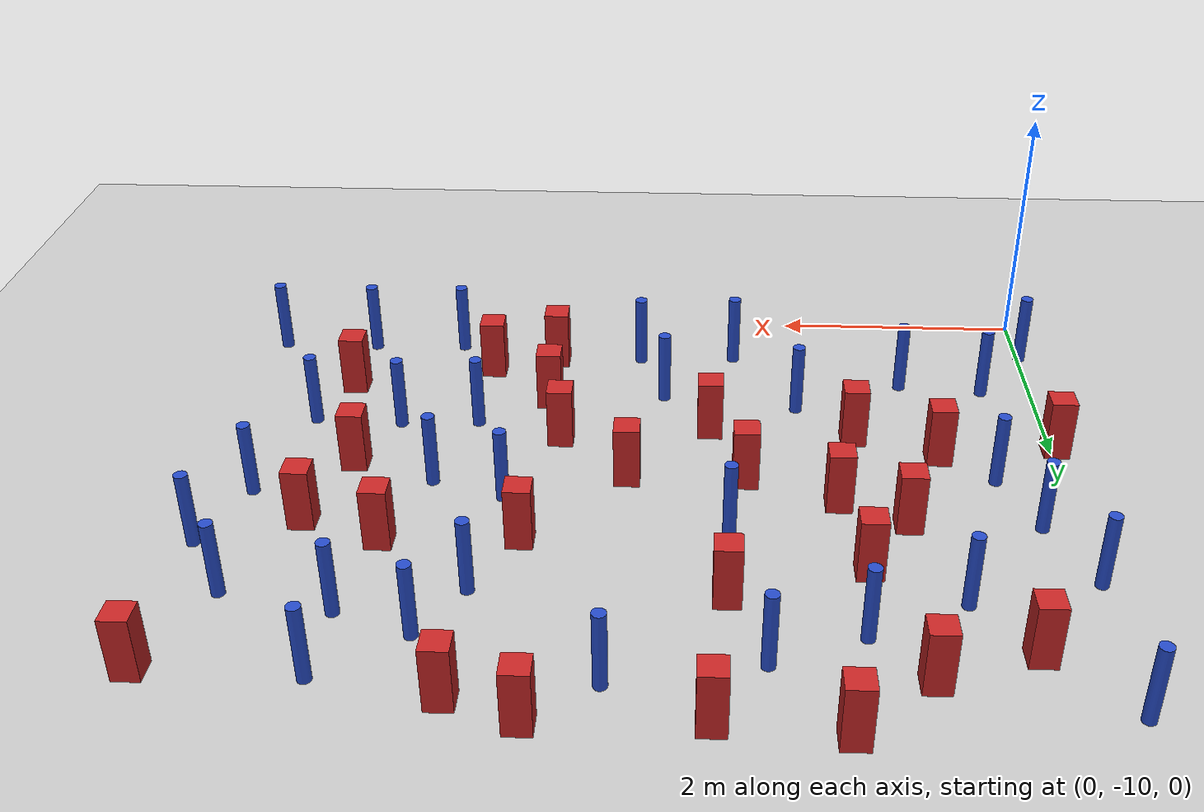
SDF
<sdf version="1.6">
 <world name="default">
  <model name="ground_plane">
   <static>1</static>
   <link name="link">
    <collision name="collision">
     <geometry><plane><normal>0 0 1</normal><size>100 100</size></plane></geometry>
     <surface><friction><ode><mu>100</mu><mu2>50</mu2></ode></friction></surface>
    </collision>
    <visual name="visual">
     <cast_shadows>0</cast_shadows>
     <geometry><plane><normal>0 0 1</normal><size>100 100</size></plane></geometry>
     <material>
      <ambient>1.0 1.0 1.0 1.0</ambient>
      <diffuse>0.8 0.8 0.8 1.0</diffuse>
      <specular>0.01 0.01 0.01 1.000000</specular>
     </material>
    </visual>
   </link>
  </model>
  <model name="square_post_obstacle7">
   <static>true</static>
   <pose>3.33007121524 -7.52048143749 8.22691968438e-08 7.2212513382e-06 -7.54495500217e-07 2.29674213826e-05</pose>
   <link name="link">
    <pose>0 0 0.25 0 -0 0</pose>
    <inertial>
     <mass>100</mass>
     <inertia>
      <ixx>0.166667</ixx>
      <ixy>0</ixy>
      <ixz>0</ixz>
      <iyy>0.166667</iyy>
      <iyz>0</iyz>
      <izz>0.166667</izz>
     </inertia>
    </inertial>
    <collision name="collision"><geometry><box><size>.2 .2 .5</size></box></geometry></collision>
    <visual name="visual">
     <geometry><box><size>.2 .2 .5</size></box></geometry>
     <material>
      <script><name>Gazebo/Red</name><uri>file://media/materials/scripts/gazebo.material</uri></script>
     </material>
    </visual>
   </link>
  </model>
  <model name="square_post_obstacle18">
   <static>true</static>
   <pose>1.27242105689 -5.35090698506 8.22691968438e-08 7.2212513382e-06 -7.54495500217e-07 2.29674213826e-05</pose>
   <link name="link">
    <pose>0 0 0.25 0 -0 0</pose>
    <inertial>
     <mass>100</mass>
     <inertia>
      <ixx>0.166667</ixx>
      <ixy>0</ixy>
      <ixz>0</ixz>
      <iyy>0.166667</iyy>
      <iyz>0</iyz>
      <izz>0.166667</izz>
     </inertia>
    </inertial>
    <collision name="collision"><geometry><box><size>.2 .2 .5</size></box></geometry></collision>
    <visual name="visual">
     <geometry><box><size>.2 .2 .5</size></box></geometry>
     <material>
      <script><name>Gazebo/Red</name><uri>file://media/materials/scripts/gazebo.material</uri></script>
     </material>
    </visual>
   </link>
  </model>
  <model name="pole_obstacle15">
   <static>true</static>
   <pose>0.411355992666 -8.88638203514 2.88873142074e-08 -9.90536691079e-09 4.6021994896e-07 -1.2096599498e-07</pose>
   <link name="link">
    <pose>0 0 0.3 0 -0 0</pose>
    <inertial>
     <mass>1</mass>
     <inertia><ixx>0.145833</ixx><ixy>0</ixy><ixz>0</ixz><iyy>0.145833</iyy><iyz>0</iyz><izz>0.125</izz></inertia>
    </inertial>
    <collision name="collision">
     <geometry><cylinder><radius>0.05</radius><length>.6</length></cylinder></geometry>
    </collision>
    <visual name="visual">
     <geometry><cylinder><radius>0.05</radius><length>.6</length></cylinder></geometry>
     <material>
      <script><name>Gazebo/Blue</name><uri>file://media/materials/scripts/gazebo.material</uri></script>
     </material>
    </visual>
   </link>
  </model>
  <model name="square_post_obstacle29">
   <static>true</static>
   <pose>4.37672534595 -5.08473610295 8.22691968438e-08 7.2212513382e-06 -7.54495500217e-07 2.29674213826e-05</pose>
   <link name="link">
    <pose>0 0 0.25 0 -0 0</pose>
    <inertial>
     <mass>100</mass>
     <inertia>
      <ixx>0.166667</ixx>
      <ixy>0</ixy>
      <ixz>0</ixz>
      <iyy>0.166667</iyy>
      <iyz>0</iyz>
      <izz>0.166667</izz>
     </inertia>
    </inertial>
    <collision name="collision"><geometry><box><size>.2 .2 .5</size></box></geometry></collision>
    <visual name="visual">
     <geometry><box><size>.2 .2 .5</size></box></geometry>
     <material>
      <script><name>Gazebo/Red</name><uri>file://media/materials/scripts/gazebo.material</uri></script>
     </material>
    </visual>
   </link>
  </model>
  <model name="pole_obstacle21">
   <static>true</static>
   <pose>0.508835813226 -7.58805175985 2.88873142074e-08 -9.90536689714e-09 4.60219948992e-07 -1.20965994957e-07</pose>
   <link name="link">
    <pose>0 0 0.3 0 -0 0</pose>
    <inertial>
     <mass>1</mass>
     <inertia><ixx>0.145833</ixx><ixy>0</ixy><ixz>0</ixz><iyy>0.145833</iyy><iyz>0</iyz><izz>0.125</izz></inertia>
    </inertial>
    <collision name="collision">
     <geometry><cylinder><radius>0.05</radius><length>.6</length></cylinder></geometry>
    </collision>
    <visual name="visual">
     <geometry><cylinder><radius>0.05</radius><length>.6</length></cylinder></geometry>
     <material>
      <script><name>Gazebo/Blue</name><uri>file://media/materials/scripts/gazebo.material</uri></script>
     </material>
    </visual>
   </link>
  </model>
  <model name="pole_obstacle26">
   <static>true</static>
   <pose>2.48929633033 -9.37194620286 2.88873142074e-08 -9.90536692318e-09 4.6021994893e-07 -1.20965994988e-07</pose>
   <link name="link">
    <pose>0 0 0.3 0 -0 0</pose>
    <inertial>
     <mass>1</mass>
     <inertia><ixx>0.145833</ixx><ixy>0</ixy><ixz>0</ixz><iyy>0.145833</iyy><iyz>0</iyz><izz>0.125</izz></inertia>
    </inertial>
    <collision name="collision">
     <geometry><cylinder><radius>0.05</radius><length>.6</length></cylinder></geometry>
    </collision>
    <visual name="visual">
     <geometry><cylinder><radius>0.05</radius><length>.6</length></cylinder></geometry>
     <material>
      <script><name>Gazebo/Blue</name><uri>file://media/materials/scripts/gazebo.material</uri></script>
     </material>
    </visual>
   </link>
  </model>
  <model name="pole_obstacle30">
   <static>true</static>
   <pose>1.9841681437 -8.56652702702 2.88873142074e-08 -9.90536690287e-09 4.60219948978e-07 -1.20965994966e-07</pose>
   <link name="link">
    <pose>0 0 0.3 0 -0 0</pose>
    <inertial>
     <mass>1</mass>
     <inertia><ixx>0.145833</ixx><ixy>0</ixy><ixz>0</ixz><iyy>0.145833</iyy><iyz>0</iyz><izz>0.125</izz></inertia>
    </inertial>
    <collision name="collision">
     <geometry><cylinder><radius>0.05</radius><length>.6</length></cylinder></geometry>
    </collision>
    <visual name="visual">
     <geometry><cylinder><radius>0.05</radius><length>.6</length></cylinder></geometry>
     <material>
      <script><name>Gazebo/Blue</name><uri>file://media/materials/scripts/gazebo.material</uri></script>
     </material>
    </visual>
   </link>
  </model>
  <model name="pole_obstacle33">
   <static>true</static>
   <pose>6.15629259459 -7.25214606575 2.88873142074e-08 -9.90536690842e-09 4.60219948965e-07 -1.20965994976e-07</pose>
   <link name="link">
    <pose>0 0 0.3 0 -0 0</pose>
    <inertial>
     <mass>1</mass>
     <inertia><ixx>0.145833</ixx><ixy>0</ixy><ixz>0</ixz><iyy>0.145833</iyy><iyz>0</iyz><izz>0.125</izz></inertia>
    </inertial>
    <collision name="collision">
     <geometry><cylinder><radius>0.05</radius><length>.6</length></cylinder></geometry>
    </collision>
    <visual name="visual">
     <geometry><cylinder><radius>0.05</radius><length>.6</length></cylinder></geometry>
     <material>
      <script><name>Gazebo/Blue</name><uri>file://media/materials/scripts/gazebo.material</uri></script>
     </material>
    </visual>
   </link>
  </model>
  <model name="pole_obstacle35">
   <static>true</static>
   <pose>5.24159167496 -5.88840678747 2.88873142074e-08 -9.90536690842e-09 4.60219948965e-07 -1.20965994976e-07</pose>
   <link name="link">
    <pose>0 0 0.3 0 -0 0</pose>
    <inertial>
     <mass>1</mass>
     <inertia><ixx>0.145833</ixx><ixy>0</ixy><ixz>0</ixz><iyy>0.145833</iyy><iyz>0</iyz><izz>0.125</izz></inertia>
    </inertial>
    <collision name="collision">
     <geometry><cylinder><radius>0.05</radius><length>.6</length></cylinder></geometry>
    </collision>
    <visual name="visual">
     <geometry><cylinder><radius>0.05</radius><length>.6</length></cylinder></geometry>
     <material>
      <script><name>Gazebo/Blue</name><uri>file://media/materials/scripts/gazebo.material</uri></script>
     </material>
    </visual>
   </link>
  </model>
  <model name="pole_obstacle41">
   <static>true</static>
   <pose>5.20122017927 -8.22808098571 2.88873142074e-08 -9.9053668967e-09 4.60219948993e-07 -1.20965994957e-07</pose>
   <link name="link">
    <pose>0 0 0.3 0 -0 0</pose>
    <inertial>
     <mass>1</mass>
     <inertia><ixx>0.145833</ixx><ixy>0</ixy><ixz>0</ixz><iyy>0.145833</iyy><iyz>0</iyz><izz>0.125</izz></inertia>
    </inertial>
    <collision name="collision">
     <geometry><cylinder><radius>0.05</radius><length>.6</length></cylinder></geometry>
    </collision>
    <visual name="visual">
     <geometry><cylinder><radius>0.05</radius><length>.6</length></cylinder></geometry>
     <material>
      <script><name>Gazebo/Blue</name><uri>file://media/materials/scripts/gazebo.material</uri></script>
     </material>
    </visual>
   </link>
  </model>
  <model name="square_post_obstacle40">
   <static>true</static>
   <pose>1.73564688799 -7.24559755156 8.22691968438e-08 7.2212513382e-06 -7.54495500217e-07 2.29674213826e-05</pose>
   <link name="link">
    <pose>0 0 0.25 0 -0 0</pose>
    <inertial>
     <mass>100</mass>
     <inertia>
      <ixx>0.166667</ixx>
      <ixy>0</ixy>
      <ixz>0</ixz>
      <iyy>0.166667</iyy>
      <iyz>0</iyz>
      <izz>0.166667</izz>
     </inertia>
    </inertial>
    <collision name="collision"><geometry><box><size>.2 .2 .5</size></box></geometry></collision>
    <visual name="visual">
     <geometry><box><size>.2 .2 .5</size></box></geometry>
     <material>
      <script><name>Gazebo/Red</name><uri>file://media/materials/scripts/gazebo.material</uri></script>
     </material>
    </visual>
   </link>
  </model>
  <model name="pole_obstacle50">
   <static>true</static>
   <pose>5.90318682841 -8.25488363701 2.88873142074e-08 -9.9053668967e-09 4.60219948993e-07 -1.20965994957e-07</pose>
   <link name="link">
    <pose>0 0 0.3 0 -0 0</pose>
    <inertial>
     <mass>1</mass>
     <inertia><ixx>0.145833</ixx><ixy>0</ixy><ixz>0</ixz><iyy>0.145833</iyy><iyz>0</iyz><izz>0.125</izz></inertia>
    </inertial>
    <collision name="collision">
     <geometry><cylinder><radius>0.05</radius><length>.6</length></cylinder></geometry>
    </collision>
    <visual name="visual">
     <geometry><cylinder><radius>0.05</radius><length>.6</length></cylinder></geometry>
     <material>
      <script><name>Gazebo/Blue</name><uri>file://media/materials/scripts/gazebo.material</uri></script>
     </material>
    </visual>
   </link>
  </model>
  <model name="square_post_obstacle49">
   <static>true</static>
   <pose>0.557776820444 -5.622054485 8.22691968438e-08 7.2212513382e-06 -7.54495500217e-07 2.29674213826e-05</pose>
   <link name="link">
    <pose>0 0 0.25 0 -0 0</pose>
    <inertial>
     <mass>100</mass>
     <inertia>
      <ixx>0.166667</ixx>
      <ixy>0</ixy>
      <ixz>0</ixz>
      <iyy>0.166667</iyy>
      <iyz>0</iyz>
      <izz>0.166667</izz>
     </inertia>
    </inertial>
    <collision name="collision"><geometry><box><size>.2 .2 .5</size></box></geometry></collision>
    <visual name="visual">
     <geometry><box><size>.2 .2 .5</size></box></geometry>
     <material>
      <script><name>Gazebo/Red</name><uri>file://media/materials/scripts/gazebo.material</uri></script>
     </material>
    </visual>
   </link>
  </model>
  <model name="square_post_obstacle50">
   <static>true</static>
   <pose>1.58311592477 -6.45582295382 8.22691968438e-08 7.2212513382e-06 -7.54495500217e-07 2.29674213826e-05</pose>
   <link name="link">
    <pose>0 0 0.25 0 -0 0</pose>
    <inertial>
     <mass>100</mass>
     <inertia>
      <ixx>0.166667</ixx>
      <ixy>0</ixy>
      <ixz>0</ixz>
      <iyy>0.166667</iyy>
      <iyz>0</iyz>
      <izz>0.166667</izz>
     </inertia>
    </inertial>
    <collision name="collision"><geometry><box><size>.2 .2 .5</size></box></geometry></collision>
    <visual name="visual">
     <geometry><box><size>.2 .2 .5</size></box></geometry>
     <material>
      <script><name>Gazebo/Red</name><uri>file://media/materials/scripts/gazebo.material</uri></script>
     </material>
    </visual>
   </link>
  </model>
  <model name="square_post_obstacle51">
   <static>true</static>
   <pose>5.07565745 -6.67274923484 8.22691968438e-08 7.2212513382e-06 -7.54495500217e-07 2.29674213826e-05</pose>
   <link name="link">
    <pose>0 0 0.25 0 -0 0</pose>
    <inertial>
     <mass>100</mass>
     <inertia>
      <ixx>0.166667</ixx>
      <ixy>0</ixy>
      <ixz>0</ixz>
      <iyy>0.166667</iyy>
      <iyz>0</iyz>
      <izz>0.166667</izz>
     </inertia>
    </inertial>
    <collision name="collision"><geometry><box><size>.2 .2 .5</size></box></geometry></collision>
    <visual name="visual">
     <geometry><box><size>.2 .2 .5</size></box></geometry>
     <material>
      <script><name>Gazebo/Red</name><uri>file://media/materials/scripts/gazebo.material</uri></script>
     </material>
    </visual>
   </link>
  </model>
  <model name="square_post_obstacle52">
   <static>true</static>
   <pose>2.42564193296 -7.52236734834 8.22691968438e-08 7.2212513382e-06 -7.54495500217e-07 2.29674213826e-05</pose>
   <link name="link">
    <pose>0 0 0.25 0 -0 0</pose>
    <inertial>
     <mass>100</mass>
     <inertia>
      <ixx>0.166667</ixx>
      <ixy>0</ixy>
      <ixz>0</ixz>
      <iyy>0.166667</iyy>
      <iyz>0</iyz>
      <izz>0.166667</izz>
     </inertia>
    </inertial>
    <collision name="collision"><geometry><box><size>.2 .2 .5</size></box></geometry></collision>
    <visual name="visual">
     <geometry><box><size>.2 .2 .5</size></box></geometry>
     <material>
      <script><name>Gazebo/Red</name><uri>file://media/materials/scripts/gazebo.material</uri></script>
     </material>
    </visual>
   </link>
  </model>
  <model name="pole_obstacle55">
   <static>true</static>
   <pose>4.81331314046 -7.42840633154 2.88873142074e-08 -9.90536690842e-09 4.60219948965e-07 -1.20965994976e-07</pose>
   <link name="link">
    <pose>0 0 0.3 0 -0 0</pose>
    <inertial>
     <mass>1</mass>
     <inertia><ixx>0.145833</ixx><ixy>0</ixy><ixz>0</ixz><iyy>0.145833</iyy><iyz>0</iyz><izz>0.125</izz></inertia>
    </inertial>
    <collision name="collision">
     <geometry><cylinder><radius>0.05</radius><length>.6</length></cylinder></geometry>
    </collision>
    <visual name="visual">
     <geometry><cylinder><radius>0.05</radius><length>.6</length></cylinder></geometry>
     <material>
      <script><name>Gazebo/Blue</name><uri>file://media/materials/scripts/gazebo.material</uri></script>
     </material>
    </visual>
   </link>
  </model>
  <model name="square_post_obstacle59">
   <static>true</static>
   <pose>5.6840634969 -8.79535064489 8.22691968438e-08 7.22125133819e-06 -7.54495500217e-07 2.29674213826e-05</pose>
   <link name="link">
    <pose>0 0 0.25 0 -0 0</pose>
    <inertial>
     <mass>100</mass>
     <inertia>
      <ixx>0.166667</ixx>
      <ixy>0</ixy>
      <ixz>0</ixz>
      <iyy>0.166667</iyy>
      <iyz>0</iyz>
      <izz>0.166667</izz>
     </inertia>
    </inertial>
    <collision name="collision"><geometry><box><size>.2 .2 .5</size></box></geometry></collision>
    <visual name="visual">
     <geometry><box><size>.2 .2 .5</size></box></geometry>
     <material>
      <script><name>Gazebo/Red</name><uri>file://media/materials/scripts/gazebo.material</uri></script>
     </material>
    </visual>
   </link>
  </model>
  <model name="pole_obstacle61">
   <static>true</static>
   <pose>3.39140231156 -5.26118490442 2.88873142074e-08 -9.90536689859e-09 4.60219948989e-07 -1.20965994961e-07</pose>
   <link name="link">
    <pose>0 0 0.3 0 -0 0</pose>
    <inertial>
     <mass>1</mass>
     <inertia><ixx>0.145833</ixx><ixy>0</ixy><ixz>0</ixz><iyy>0.145833</iyy><iyz>0</iyz><izz>0.125</izz></inertia>
    </inertial>
    <collision name="collision">
     <geometry><cylinder><radius>0.05</radius><length>.6</length></cylinder></geometry>
    </collision>
    <visual name="visual">
     <geometry><cylinder><radius>0.05</radius><length>.6</length></cylinder></geometry>
     <material>
      <script><name>Gazebo/Blue</name><uri>file://media/materials/scripts/gazebo.material</uri></script>
     </material>
    </visual>
   </link>
  </model>
  <model name="square_post_obstacle64">
   <static>true</static>
   <pose>3.8829139642 -8.04766249593 8.22691968438e-08 7.22125133819e-06 -7.54495500217e-07 2.29674213826e-05</pose>
   <link name="link">
    <pose>0 0 0.25 0 -0 0</pose>
    <inertial>
     <mass>100</mass>
     <inertia>
      <ixx>0.166667</ixx>
      <ixy>0</ixy>
      <ixz>0</ixz>
      <iyy>0.166667</iyy>
      <iyz>0</iyz>
      <izz>0.166667</izz>
     </inertia>
    </inertial>
    <collision name="collision"><geometry><box><size>.2 .2 .5</size></box></geometry></collision>
    <visual name="visual">
     <geometry><box><size>.2 .2 .5</size></box></geometry>
     <material>
      <script><name>Gazebo/Red</name><uri>file://media/materials/scripts/gazebo.material</uri></script>
     </material>
    </visual>
   </link>
  </model>
  <model name="square_post_obstacle72">
   <static>true</static>
   <pose>4.06353118827 -6.7204311459 8.22691968438e-08 7.2212513382e-06 -7.54495500217e-07 2.29674213826e-05</pose>
   <link name="link">
    <pose>0 0 0.25 0 -0 0</pose>
    <inertial>
     <mass>100</mass>
     <inertia>
      <ixx>0.166667</ixx>
      <ixy>0</ixy>
      <ixz>0</ixz>
      <iyy>0.166667</iyy>
      <iyz>0</iyz>
      <izz>0.166667</izz>
     </inertia>
    </inertial>
    <collision name="collision"><geometry><box><size>.2 .2 .5</size></box></geometry></collision>
    <visual name="visual">
     <geometry><box><size>.2 .2 .5</size></box></geometry>
     <material>
      <script><name>Gazebo/Red</name><uri>file://media/materials/scripts/gazebo.material</uri></script>
     </material>
    </visual>
   </link>
  </model>
  <model name="pole_obstacle72">
   <static>true</static>
   <pose>6.07074246478 -6.05977519259 2.88873142074e-08 -9.90536690842e-09 4.60219948965e-07 -1.20965994976e-07</pose>
   <link name="link">
    <pose>0 0 0.3 0 -0 0</pose>
    <inertial>
     <mass>1</mass>
     <inertia><ixx>0.145833</ixx><ixy>0</ixy><ixz>0</ixz><iyy>0.145833</iyy><iyz>0</iyz><izz>0.125</izz></inertia>
    </inertial>
    <collision name="collision">
     <geometry><cylinder><radius>0.05</radius><length>.6</length></cylinder></geometry>
    </collision>
    <visual name="visual">
     <geometry><cylinder><radius>0.05</radius><length>.6</length></cylinder></geometry>
     <material>
      <script><name>Gazebo/Blue</name><uri>file://media/materials/scripts/gazebo.material</uri></script>
     </material>
    </visual>
   </link>
  </model>
  <model name="pole_obstacle76">
   <static>true</static>
   <pose>2.55539161024 -6.88070604294 2.88873142074e-08 -9.90536689859e-09 4.60219948989e-07 -1.20965994961e-07</pose>
   <link name="link">
    <pose>0 0 0.3 0 -0 0</pose>
    <inertial>
     <mass>1</mass>
     <inertia><ixx>0.145833</ixx><ixy>0</ixy><ixz>0</ixz><iyy>0.145833</iyy><iyz>0</iyz><izz>0.125</izz></inertia>
    </inertial>
    <collision name="collision">
     <geometry><cylinder><radius>0.05</radius><length>.6</length></cylinder></geometry>
    </collision>
    <visual name="visual">
     <geometry><cylinder><radius>0.05</radius><length>.6</length></cylinder></geometry>
     <material>
      <script><name>Gazebo/Blue</name><uri>file://media/materials/scripts/gazebo.material</uri></script>
     </material>
    </visual>
   </link>
  </model>
  <model name="square_post_obstacle77">
   <static>true</static>
   <pose>2.69569462047 -8.20461627611 8.22691968438e-08 7.22125133819e-06 -7.54495500217e-07 2.29674213826e-05</pose>
   <link name="link">
    <pose>0 0 0.25 0 -0 0</pose>
    <inertial>
     <mass>100</mass>
     <inertia>
      <ixx>0.166667</ixx>
      <ixy>0</ixy>
      <ixz>0</ixz>
      <iyy>0.166667</iyy>
      <iyz>0</iyz>
      <izz>0.166667</izz>
     </inertia>
    </inertial>
    <collision name="collision"><geometry><box><size>.2 .2 .5</size></box></geometry></collision>
    <visual name="visual">
     <geometry><box><size>.2 .2 .5</size></box></geometry>
     <material>
      <script><name>Gazebo/Red</name><uri>file://media/materials/scripts/gazebo.material</uri></script>
     </material>
    </visual>
   </link>
  </model>
  <model name="pole_obstacle83">
   <static>true</static>
   <pose>1.09015598729 -8.95439836109 2.88873142074e-08 -9.90536690474e-09 4.60219948974e-07 -1.2096599497e-07</pose>
   <link name="link">
    <pose>0 0 0.3 0 -0 0</pose>
    <inertial>
     <mass>1</mass>
     <inertia><ixx>0.145833</ixx><ixy>0</ixy><ixz>0</ixz><iyy>0.145833</iyy><iyz>0</iyz><izz>0.125</izz></inertia>
    </inertial>
    <collision name="collision">
     <geometry><cylinder><radius>0.05</radius><length>.6</length></cylinder></geometry>
    </collision>
    <visual name="visual">
     <geometry><cylinder><radius>0.05</radius><length>.6</length></cylinder></geometry>
     <material>
      <script><name>Gazebo/Blue</name><uri>file://media/materials/scripts/gazebo.material</uri></script>
     </material>
    </visual>
   </link>
  </model>
  <model name="pole_obstacle92">
   <static>true</static>
   <pose>4.36565807699 -6.1549609786 2.88873142074e-08 -9.90536690842e-09 4.60219948965e-07 -1.20965994976e-07</pose>
   <link name="link">
    <pose>0 0 0.3 0 -0 0</pose>
    <inertial>
     <mass>1</mass>
     <inertia><ixx>0.145833</ixx><ixy>0</ixy><ixz>0</ixz><iyy>0.145833</iyy><iyz>0</iyz><izz>0.125</izz></inertia>
    </inertial>
    <collision name="collision">
     <geometry><cylinder><radius>0.05</radius><length>.6</length></cylinder></geometry>
    </collision>
    <visual name="visual">
     <geometry><cylinder><radius>0.05</radius><length>.6</length></cylinder></geometry>
     <material>
      <script><name>Gazebo/Blue</name><uri>file://media/materials/scripts/gazebo.material</uri></script>
     </material>
    </visual>
   </link>
  </model>
  <model name="pole_obstacle103">
   <static>true</static>
   <pose>3.07464420423 -8.71493508698 2.88873142074e-08 -9.90536692318e-09 4.6021994893e-07 -1.20965994988e-07</pose>
   <link name="link">
    <pose>0 0 0.3 0 -0 0</pose>
    <inertial>
     <mass>1</mass>
     <inertia><ixx>0.145833</ixx><ixy>0</ixy><ixz>0</ixz><iyy>0.145833</iyy><iyz>0</iyz><izz>0.125</izz></inertia>
    </inertial>
    <collision name="collision">
     <geometry><cylinder><radius>0.05</radius><length>.6</length></cylinder></geometry>
    </collision>
    <visual name="visual">
     <geometry><cylinder><radius>0.05</radius><length>.6</length></cylinder></geometry>
     <material>
      <script><name>Gazebo/Blue</name><uri>file://media/materials/scripts/gazebo.material</uri></script>
     </material>
    </visual>
   </link>
  </model>
  <model name="pole_obstacle104">
   <static>true</static>
   <pose>5.27496052614 -5.24894769308 2.88873142074e-08 -9.90536690842e-09 4.60219948965e-07 -1.20965994976e-07</pose>
   <link name="link">
    <pose>0 0 0.3 0 -0 0</pose>
    <inertial>
     <mass>1</mass>
     <inertia><ixx>0.145833</ixx><ixy>0</ixy><ixz>0</ixz><iyy>0.145833</iyy><iyz>0</iyz><izz>0.125</izz></inertia>
    </inertial>
    <collision name="collision">
     <geometry><cylinder><radius>0.05</radius><length>.6</length></cylinder></geometry>
    </collision>
    <visual name="visual">
     <geometry><cylinder><radius>0.05</radius><length>.6</length></cylinder></geometry>
     <material>
      <script><name>Gazebo/Blue</name><uri>file://media/materials/scripts/gazebo.material</uri></script>
     </material>
    </visual>
   </link>
  </model>
  <model name="pole_obstacle105">
   <static>true</static>
   <pose>2.32267586864 -5.48192519288 2.88873142074e-08 -9.90536689859e-09 4.60219948989e-07 -1.20965994961e-07</pose>
   <link name="link">
    <pose>0 0 0.3 0 -0 0</pose>
    <inertial>
     <mass>1</mass>
     <inertia><ixx>0.145833</ixx><ixy>0</ixy><ixz>0</ixz><iyy>0.145833</iyy><iyz>0</iyz><izz>0.125</izz></inertia>
    </inertial>
    <collision name="collision">
     <geometry><cylinder><radius>0.05</radius><length>.6</length></cylinder></geometry>
    </collision>
    <visual name="visual">
     <geometry><cylinder><radius>0.05</radius><length>.6</length></cylinder></geometry>
     <material>
      <script><name>Gazebo/Blue</name><uri>file://media/materials/scripts/gazebo.material</uri></script>
     </material>
    </visual>
   </link>
  </model>
  <model name="pole_obstacle107">
   <static>true</static>
   <pose>0.00398841112288 -5.09509888009 2.88873142074e-08 -9.90536689781e-09 4.60219948991e-07 -1.2096599496e-07</pose>
   <link name="link">
    <pose>0 0 0.3 0 -0 0</pose>
    <inertial>
     <mass>1</mass>
     <inertia><ixx>0.145833</ixx><ixy>0</ixy><ixz>0</ixz><iyy>0.145833</iyy><iyz>0</iyz><izz>0.125</izz></inertia>
    </inertial>
    <collision name="collision">
     <geometry><cylinder><radius>0.05</radius><length>.6</length></cylinder></geometry>
    </collision>
    <visual name="visual">
     <geometry><cylinder><radius>0.05</radius><length>.6</length></cylinder></geometry>
     <material>
      <script><name>Gazebo/Blue</name><uri>file://media/materials/scripts/gazebo.material</uri></script>
     </material>
    </visual>
   </link>
  </model>
  <model name="square_post_obstacle99">
   <static>true</static>
   <pose>6.40269562708 -5.275900625 8.22691968438e-08 7.2212513382e-06 -7.54495500217e-07 2.29674213826e-05</pose>
   <link name="link">
    <pose>0 0 0.25 0 -0 0</pose>
    <inertial>
     <mass>100</mass>
     <inertia>
      <ixx>0.166667</ixx>
      <ixy>0</ixy>
      <ixz>0</ixz>
      <iyy>0.166667</iyy>
      <iyz>0</iyz>
      <izz>0.166667</izz>
     </inertia>
    </inertial>
    <collision name="collision"><geometry><box><size>.2 .2 .5</size></box></geometry></collision>
    <visual name="visual">
     <geometry><box><size>.2 .2 .5</size></box></geometry>
     <material>
      <script><name>Gazebo/Red</name><uri>file://media/materials/scripts/gazebo.material</uri></script>
     </material>
    </visual>
   </link>
  </model>
  <model name="square_post_obstacle108">
   <static>true</static>
   <pose>1.24449756839 -7.004348348 8.22691968438e-08 7.2212513382e-06 -7.54495500217e-07 2.29674213826e-05</pose>
   <link name="link">
    <pose>0 0 0.25 0 -0 0</pose>
    <inertial>
     <mass>100</mass>
     <inertia>
      <ixx>0.166667</ixx>
      <ixy>0</ixy>
      <ixz>0</ixz>
      <iyy>0.166667</iyy>
      <iyz>0</iyz>
      <izz>0.166667</izz>
     </inertia>
    </inertial>
    <collision name="collision"><geometry><box><size>.2 .2 .5</size></box></geometry></collision>
    <visual name="visual">
     <geometry><box><size>.2 .2 .5</size></box></geometry>
     <material>
      <script><name>Gazebo/Red</name><uri>file://media/materials/scripts/gazebo.material</uri></script>
     </material>
    </visual>
   </link>
  </model>
  <model name="square_post_obstacle110">
   <static>true</static>
   <pose>3.86757484116 -4.89921703767 8.22691968438e-08 7.22125133819e-06 -7.54495500217e-07 2.29674213826e-05</pose>
   <link name="link">
    <pose>0 0 0.25 0 -0 0</pose>
    <inertial>
     <mass>100</mass>
     <inertia>
      <ixx>0.166667</ixx>
      <ixy>0</ixy>
      <ixz>0</ixz>
      <iyy>0.166667</iyy>
      <iyz>0</iyz>
      <izz>0.166667</izz>
     </inertia>
    </inertial>
    <collision name="collision"><geometry><box><size>.2 .2 .5</size></box></geometry></collision>
    <visual name="visual">
     <geometry><box><size>.2 .2 .5</size></box></geometry>
     <material>
      <script><name>Gazebo/Red</name><uri>file://media/materials/scripts/gazebo.material</uri></script>
     </material>
    </visual>
   </link>
  </model>
  <model name="pole_obstacle134">
   <static>true</static>
   <pose>-0.0149218661153 -6.3826409734 2.88873142074e-08 -9.90536689752e-09 4.60219948991e-07 -1.2096599496e-07</pose>
   <link name="link">
    <pose>0 0 0.3 0 -0 0</pose>
    <inertial>
     <mass>1</mass>
     <inertia><ixx>0.145833</ixx><ixy>0</ixy><ixz>0</ixz><iyy>0.145833</iyy><iyz>0</iyz><izz>0.125</izz></inertia>
    </inertial>
    <collision name="collision">
     <geometry><cylinder><radius>0.05</radius><length>.6</length></cylinder></geometry>
    </collision>
    <visual name="visual">
     <geometry><cylinder><radius>0.05</radius><length>.6</length></cylinder></geometry>
     <material>
      <script><name>Gazebo/Blue</name><uri>file://media/materials/scripts/gazebo.material</uri></script>
     </material>
    </visual>
   </link>
  </model>
  <model name="square_post_obstacle130">
   <static>true</static>
   <pose>2.5805932074 -6.12244987547 8.22691968438e-08 7.22125133819e-06 -7.54495500217e-07 2.29674213826e-05</pose>
   <link name="link">
    <pose>0 0 0.25 0 -0 0</pose>
    <inertial>
     <mass>100</mass>
     <inertia>
      <ixx>0.166667</ixx>
      <ixy>0</ixy>
      <ixz>0</ixz>
      <iyy>0.166667</iyy>
      <iyz>0</iyz>
      <izz>0.166667</izz>
     </inertia>
    </inertial>
    <collision name="collision"><geometry><box><size>.2 .2 .5</size></box></geometry></collision>
    <visual name="visual">
     <geometry><box><size>.2 .2 .5</size></box></geometry>
     <material>
      <script><name>Gazebo/Red</name><uri>file://media/materials/scripts/gazebo.material</uri></script>
     </material>
    </visual>
   </link>
  </model>
  <model name="square_post_obstacle132">
   <static>true</static>
   <pose>4.02062797762 -8.6098605543 8.22691968438e-08 7.22125133819e-06 -7.54495500217e-07 2.29674213826e-05</pose>
   <link name="link">
    <pose>0 0 0.25 0 -0 0</pose>
    <inertial>
     <mass>100</mass>
     <inertia>
      <ixx>0.166667</ixx>
      <ixy>0</ixy>
      <ixz>0</ixz>
      <iyy>0.166667</iyy>
      <iyz>0</iyz>
      <izz>0.166667</izz>
     </inertia>
    </inertial>
    <collision name="collision"><geometry><box><size>.2 .2 .5</size></box></geometry></collision>
    <visual name="visual">
     <geometry><box><size>.2 .2 .5</size></box></geometry>
     <material>
      <script><name>Gazebo/Red</name><uri>file://media/materials/scripts/gazebo.material</uri></script>
     </material>
    </visual>
   </link>
  </model>
  <model name="square_post_obstacle137">
   <static>true</static>
   <pose>5.68019010539 -6.88655267828 8.22691968438e-08 7.2212513382e-06 -7.54495500217e-07 2.29674213826e-05</pose>
   <link name="link">
    <pose>0 0 0.25 0 -0 0</pose>
    <inertial>
     <mass>100</mass>
     <inertia>
      <ixx>0.166667</ixx>
      <ixy>0</ixy>
      <ixz>0</ixz>
      <iyy>0.166667</iyy>
      <iyz>0</iyz>
      <izz>0.166667</izz>
     </inertia>
    </inertial>
    <collision name="collision"><geometry><box><size>.2 .2 .5</size></box></geometry></collision>
    <visual name="visual">
     <geometry><box><size>.2 .2 .5</size></box></geometry>
     <material>
      <script><name>Gazebo/Red</name><uri>file://media/materials/scripts/gazebo.material</uri></script>
     </material>
    </visual>
   </link>
  </model>
  <model name="pole_obstacle151">
   <static>true</static>
   <pose>3.29013713708 -9.327629945 2.88873142074e-08 -9.90536692318e-09 4.6021994893e-07 -1.20965994988e-07</pose>
   <link name="link">
    <pose>0 0 0.3 0 -0 0</pose>
    <inertial>
     <mass>1</mass>
     <inertia><ixx>0.145833</ixx><ixy>0</ixy><ixz>0</ixz><iyy>0.145833</iyy><iyz>0</iyz><izz>0.125</izz></inertia>
    </inertial>
    <collision name="collision">
     <geometry><cylinder><radius>0.05</radius><length>.6</length></cylinder></geometry>
    </collision>
    <visual name="visual">
     <geometry><cylinder><radius>0.05</radius><length>.6</length></cylinder></geometry>
     <material>
      <script><name>Gazebo/Blue</name><uri>file://media/materials/scripts/gazebo.material</uri></script>
     </material>
    </visual>
   </link>
  </model>
  <model name="pole_obstacle159">
   <static>true</static>
   <pose>5.6505350268 -9.47510118501 2.88873142074e-08 -9.9053668967e-09 4.60219948993e-07 -1.20965994957e-07</pose>
   <link name="link">
    <pose>0 0 0.3 0 -0 0</pose>
    <inertial>
     <mass>1</mass>
     <inertia><ixx>0.145833</ixx><ixy>0</ixy><ixz>0</ixz><iyy>0.145833</iyy><iyz>0</iyz><izz>0.125</izz></inertia>
    </inertial>
    <collision name="collision">
     <geometry><cylinder><radius>0.05</radius><length>.6</length></cylinder></geometry>
    </collision>
    <visual name="visual">
     <geometry><cylinder><radius>0.05</radius><length>.6</length></cylinder></geometry>
     <material>
      <script><name>Gazebo/Blue</name><uri>file://media/materials/scripts/gazebo.material</uri></script>
     </material>
    </visual>
   </link>
  </model>
  <model name="pole_obstacle162">
   <static>true</static>
   <pose>4.67051705839 -5.68204969829 2.88873142074e-08 -9.90536690842e-09 4.60219948965e-07 -1.20965994976e-07</pose>
   <link name="link">
    <pose>0 0 0.3 0 -0 0</pose>
    <inertial>
     <mass>1</mass>
     <inertia><ixx>0.145833</ixx><ixy>0</ixy><ixz>0</ixz><iyy>0.145833</iyy><iyz>0</iyz><izz>0.125</izz></inertia>
    </inertial>
    <collision name="collision">
     <geometry><cylinder><radius>0.05</radius><length>.6</length></cylinder></geometry>
    </collision>
    <visual name="visual">
     <geometry><cylinder><radius>0.05</radius><length>.6</length></cylinder></geometry>
     <material>
      <script><name>Gazebo/Blue</name><uri>file://media/materials/scripts/gazebo.material</uri></script>
     </material>
    </visual>
   </link>
  </model>
  <model name="square_post_obstacle154">
   <static>true</static>
   <pose>0.908029372676 -7.88965610813 8.22691968438e-08 7.2212513382e-06 -7.54495500217e-07 2.29674213826e-05</pose>
   <link name="link">
    <pose>0 0 0.25 0 -0 0</pose>
    <inertial>
     <mass>100</mass>
     <inertia>
      <ixx>0.166667</ixx>
      <ixy>0</ixy>
      <ixz>0</ixz>
      <iyy>0.166667</iyy>
      <iyz>0</iyz>
      <izz>0.166667</izz>
     </inertia>
    </inertial>
    <collision name="collision"><geometry><box><size>.2 .2 .5</size></box></geometry></collision>
    <visual name="visual">
     <geometry><box><size>.2 .2 .5</size></box></geometry>
     <material>
      <script><name>Gazebo/Red</name><uri>file://media/materials/scripts/gazebo.material</uri></script>
     </material>
    </visual>
   </link>
  </model>
  <model name="pole_obstacle166">
   <static>true</static>
   <pose>0.940317210273 -6.12532180763 2.88873142074e-08 -9.90536689661e-09 4.60219948993e-07 -1.20965994957e-07</pose>
   <link name="link">
    <pose>0 0 0.3 0 -0 0</pose>
    <inertial>
     <mass>1</mass>
     <inertia><ixx>0.145833</ixx><ixy>0</ixy><ixz>0</ixz><iyy>0.145833</iyy><iyz>0</iyz><izz>0.125</izz></inertia>
    </inertial>
    <collision name="collision">
     <geometry><cylinder><radius>0.05</radius><length>.6</length></cylinder></geometry>
    </collision>
    <visual name="visual">
     <geometry><cylinder><radius>0.05</radius><length>.6</length></cylinder></geometry>
     <material>
      <script><name>Gazebo/Blue</name><uri>file://media/materials/scripts/gazebo.material</uri></script>
     </material>
    </visual>
   </link>
  </model>
  <model name="square_post_obstacle162">
   <static>true</static>
   <pose>-0.0311840500404 -8.0288040419 8.22691968438e-08 7.22125133819e-06 -7.54495500217e-07 2.29674213826e-05</pose>
   <link name="link">
    <pose>0 0 0.25 0 -0 0</pose>
    <inertial>
     <mass>100</mass>
     <inertia>
      <ixx>0.166667</ixx>
      <ixy>0</ixy>
      <ixz>0</ixz>
      <iyy>0.166667</iyy>
      <iyz>0</iyz>
      <izz>0.166667</izz>
     </inertia>
    </inertial>
    <collision name="collision"><geometry><box><size>.2 .2 .5</size></box></geometry></collision>
    <visual name="visual">
     <geometry><box><size>.2 .2 .5</size></box></geometry>
     <material>
      <script><name>Gazebo/Red</name><uri>file://media/materials/scripts/gazebo.material</uri></script>
     </material>
    </visual>
   </link>
  </model>
  <model name="square_post_obstacle164">
   <static>true</static>
   <pose>1.55252371931 -8.14047877356 8.22691968438e-08 7.22125133819e-06 -7.54495500217e-07 2.29674213826e-05</pose>
   <link name="link">
    <pose>0 0 0.25 0 -0 0</pose>
    <inertial>
     <mass>100</mass>
     <inertia>
      <ixx>0.166667</ixx>
      <ixy>0</ixy>
      <ixz>0</ixz>
      <iyy>0.166667</iyy>
      <iyz>0</iyz>
      <izz>0.166667</izz>
     </inertia>
    </inertial>
    <collision name="collision"><geometry><box><size>.2 .2 .5</size></box></geometry></collision>
    <visual name="visual">
     <geometry><box><size>.2 .2 .5</size></box></geometry>
     <material>
      <script><name>Gazebo/Red</name><uri>file://media/materials/scripts/gazebo.material</uri></script>
     </material>
    </visual>
   </link>
  </model>
  <model name="pole_obstacle176">
   <static>true</static>
   <pose>4.25424092567 -7.24349306262 2.88873142074e-08 -9.90536690842e-09 4.60219948965e-07 -1.20965994976e-07</pose>
   <link name="link">
    <pose>0 0 0.3 0 -0 0</pose>
    <inertial>
     <mass>1</mass>
     <inertia><ixx>0.145833</ixx><ixy>0</ixy><ixz>0</ixz><iyy>0.145833</iyy><iyz>0</iyz><izz>0.125</izz></inertia>
    </inertial>
    <collision name="collision">
     <geometry><cylinder><radius>0.05</radius><length>.6</length></cylinder></geometry>
    </collision>
    <visual name="visual">
     <geometry><cylinder><radius>0.05</radius><length>.6</length></cylinder></geometry>
     <material>
      <script><name>Gazebo/Blue</name><uri>file://media/materials/scripts/gazebo.material</uri></script>
     </material>
    </visual>
   </link>
  </model>
  <model name="pole_obstacle177">
   <static>true</static>
   <pose>4.86887139154 -9.49215424058 2.88873142074e-08 -9.9053668967e-09 4.60219948993e-07 -1.20965994957e-07</pose>
   <link name="link">
    <pose>0 0 0.3 0 -0 0</pose>
    <inertial>
     <mass>1</mass>
     <inertia><ixx>0.145833</ixx><ixy>0</ixy><ixz>0</ixz><iyy>0.145833</iyy><iyz>0</iyz><izz>0.125</izz></inertia>
    </inertial>
    <collision name="collision">
     <geometry><cylinder><radius>0.05</radius><length>.6</length></cylinder></geometry>
    </collision>
    <visual name="visual">
     <geometry><cylinder><radius>0.05</radius><length>.6</length></cylinder></geometry>
     <material>
      <script><name>Gazebo/Blue</name><uri>file://media/materials/scripts/gazebo.material</uri></script>
     </material>
    </visual>
   </link>
  </model>
  <model name="pole_obstacle179">
   <static>true</static>
   <pose>0.268036874444 -7.00836916524 2.88873142074e-08 -9.90536689592e-09 4.60219948995e-07 -1.20965994956e-07</pose>
   <link name="link">
    <pose>0 0 0.3 0 -0 0</pose>
    <inertial>
     <mass>1</mass>
     <inertia><ixx>0.145833</ixx><ixy>0</ixy><ixz>0</ixz><iyy>0.145833</iyy><iyz>0</iyz><izz>0.125</izz></inertia>
    </inertial>
    <collision name="collision">
     <geometry><cylinder><radius>0.05</radius><length>.6</length></cylinder></geometry>
    </collision>
    <visual name="visual">
     <geometry><cylinder><radius>0.05</radius><length>.6</length></cylinder></geometry>
     <material>
      <script><name>Gazebo/Blue</name><uri>file://media/materials/scripts/gazebo.material</uri></script>
     </material>
    </visual>
   </link>
  </model>
  <model name="square_post_obstacle174">
   <static>true</static>
   <pose>5.44956064964 -7.6472644897 8.22691968438e-08 7.2212513382e-06 -7.54495500217e-07 2.29674213826e-05</pose>
   <link name="link">
    <pose>0 0 0.25 0 -0 0</pose>
    <inertial>
     <mass>100</mass>
     <inertia>
      <ixx>0.166667</ixx>
      <ixy>0</ixy>
      <ixz>0</ixz>
      <iyy>0.166667</iyy>
      <iyz>0</iyz>
      <izz>0.166667</izz>
     </inertia>
    </inertial>
    <collision name="collision"><geometry><box><size>.2 .2 .5</size></box></geometry></collision>
    <visual name="visual">
     <geometry><box><size>.2 .2 .5</size></box></geometry>
     <material>
      <script><name>Gazebo/Red</name><uri>file://media/materials/scripts/gazebo.material</uri></script>
     </material>
    </visual>
   </link>
  </model>
  <model name="square_post_obstacle181">
   <static>true</static>
   <pose>4.54565599534 -9.10128630695 8.22691968438e-08 7.22125133819e-06 -7.54495500217e-07 2.29674213826e-05</pose>
   <link name="link">
    <pose>0 0 0.25 0 -0 0</pose>
    <inertial>
     <mass>100</mass>
     <inertia>
      <ixx>0.166667</ixx>
      <ixy>0</ixy>
      <ixz>0</ixz>
      <iyy>0.166667</iyy>
      <iyz>0</iyz>
      <izz>0.166667</izz>
     </inertia>
    </inertial>
    <collision name="collision"><geometry><box><size>.2 .2 .5</size></box></geometry></collision>
    <visual name="visual">
     <geometry><box><size>.2 .2 .5</size></box></geometry>
     <material>
      <script><name>Gazebo/Red</name><uri>file://media/materials/scripts/gazebo.material</uri></script>
     </material>
    </visual>
   </link>
  </model>
  <model name="square_post_obstacle187">
   <static>true</static>
   <pose>2.68912715359 -4.93225370372 8.22691968438e-08 7.2212513382e-06 -7.54495500217e-07 2.29674213826e-05</pose>
   <link name="link">
    <pose>0 0 0.25 0 -0 0</pose>
    <inertial>
     <mass>100</mass>
     <inertia>
      <ixx>0.166667</ixx>
      <ixy>0</ixy>
      <ixz>0</ixz>
      <iyy>0.166667</iyy>
      <iyz>0</iyz>
      <izz>0.166667</izz>
     </inertia>
    </inertial>
    <collision name="collision"><geometry><box><size>.2 .2 .5</size></box></geometry></collision>
    <visual name="visual">
     <geometry><box><size>.2 .2 .5</size></box></geometry>
     <material>
      <script><name>Gazebo/Red</name><uri>file://media/materials/scripts/gazebo.material</uri></script>
     </material>
    </visual>
   </link>
  </model>
  <model name="square_post_obstacle193">
   <static>true</static>
   <pose>1.82709982478 -4.85593515961 8.22691968438e-08 7.2212513382e-06 -7.54495500217e-07 2.29674213826e-05</pose>
   <link name="link">
    <pose>0 0 0.25 0 -0 0</pose>
    <inertial>
     <mass>100</mass>
     <inertia>
      <ixx>0.166667</ixx>
      <ixy>0</ixy>
      <ixz>0</ixz>
      <iyy>0.166667</iyy>
      <iyz>0</iyz>
      <izz>0.166667</izz>
     </inertia>
    </inertial>
    <collision name="collision"><geometry><box><size>.2 .2 .5</size></box></geometry></collision>
    <visual name="visual">
     <geometry><box><size>.2 .2 .5</size></box></geometry>
     <material>
      <script><name>Gazebo/Red</name><uri>file://media/materials/scripts/gazebo.material</uri></script>
     </material>
    </visual>
   </link>
  </model>
  <model name="pole_obstacle190">
   <static>true</static>
   <pose>4.57493100276 -8.26585429549 2.88873142074e-08 -9.9053668967e-09 4.60219948993e-07 -1.20965994957e-07</pose>
   <link name="link">
    <pose>0 0 0.3 0 -0 0</pose>
    <inertial>
     <mass>1</mass>
     <inertia><ixx>0.145833</ixx><ixy>0</ixy><ixz>0</ixz><iyy>0.145833</iyy><iyz>0</iyz><izz>0.125</izz></inertia>
    </inertial>
    <collision name="collision">
     <geometry><cylinder><radius>0.05</radius><length>.6</length></cylinder></geometry>
    </collision>
    <visual name="visual">
     <geometry><cylinder><radius>0.05</radius><length>.6</length></cylinder></geometry>
     <material>
      <script><name>Gazebo/Blue</name><uri>file://media/materials/scripts/gazebo.material</uri></script>
     </material>
    </visual>
   </link>
  </model>
  <model name="pole_obstacle192">
   <static>true</static>
   <pose>6.45755849059 -9.47707343814 2.88873142074e-08 -9.9053668967e-09 4.60219948993e-07 -1.20965994957e-07</pose>
   <link name="link">
    <pose>0 0 0.3 0 -0 0</pose>
    <inertial>
     <mass>1</mass>
     <inertia><ixx>0.145833</ixx><ixy>0</ixy><ixz>0</ixz><iyy>0.145833</iyy><iyz>0</iyz><izz>0.125</izz></inertia>
    </inertial>
    <collision name="collision">
     <geometry><cylinder><radius>0.05</radius><length>.6</length></cylinder></geometry>
    </collision>
    <visual name="visual">
     <geometry><cylinder><radius>0.05</radius><length>.6</length></cylinder></geometry>
     <material>
      <script><name>Gazebo/Blue</name><uri>file://media/materials/scripts/gazebo.material</uri></script>
     </material>
    </visual>
   </link>
  </model>
  <model name="square_post_obstacle232">
   <static>true</static>
   <pose>4.01570188901 -9.28812706195 8.22691968438e-08 7.22125133819e-06 -7.54495500217e-07 2.29674213826e-05</pose>
   <link name="link">
    <pose>0 0 0.25 0 -0 0</pose>
    <inertial>
     <mass>100</mass>
     <inertia>
      <ixx>0.166667</ixx>
      <ixy>0</ixy>
      <ixz>0</ixz>
      <iyy>0.166667</iyy>
      <iyz>0</iyz>
      <izz>0.166667</izz>
     </inertia>
    </inertial>
    <collision name="collision"><geometry><box><size>.2 .2 .5</size></box></geometry></collision>
    <visual name="visual">
     <geometry><box><size>.2 .2 .5</size></box></geometry>
     <material>
      <script><name>Gazebo/Red</name><uri>file://media/materials/scripts/gazebo.material</uri></script>
     </material>
    </visual>
   </link>
  </model>
  <model name="pole_obstacle198">
   <static>true</static>
   <pose>-0.0187629908671 -9.47574997959 2.88873142074e-08 -9.90536690803e-09 4.60219948966e-07 -1.20965994976e-07</pose>
   <link name="link">
    <pose>0 0 0.3 0 -0 0</pose>
    <inertial>
     <mass>1</mass>
     <inertia><ixx>0.145833</ixx><ixy>0</ixy><ixz>0</ixz><iyy>0.145833</iyy><iyz>0</iyz><izz>0.125</izz></inertia>
    </inertial>
    <collision name="collision">
     <geometry><cylinder><radius>0.05</radius><length>.6</length></cylinder></geometry>
    </collision>
    <visual name="visual">
     <geometry><cylinder><radius>0.05</radius><length>.6</length></cylinder></geometry>
     <material>
      <script><name>Gazebo/Blue</name><uri>file://media/materials/scripts/gazebo.material</uri></script>
     </material>
    </visual>
   </link>
  </model>
  <model name="pole_obstacle211">
   <static>true</static>
   <pose>1.65540000913 -5.76759997959 2.88873142074e-08 -9.90536689786e-09 4.6021994899e-07 -1.2096599496e-07</pose>
   <link name="link">
    <pose>0 0 0.3 0 -0 0</pose>
    <inertial>
     <mass>1</mass>
     <inertia><ixx>0.145833</ixx><ixy>0</ixy><ixz>0</ixz><iyy>0.145833</iyy><iyz>0</iyz><izz>0.125</izz></inertia>
    </inertial>
    <collision name="collision">
     <geometry><cylinder><radius>0.05</radius><length>.6</length></cylinder></geometry>
    </collision>
    <visual name="visual">
     <geometry><cylinder><radius>0.05</radius><length>.6</length></cylinder></geometry>
     <material>
      <script><name>Gazebo/Blue</name><uri>file://media/materials/scripts/gazebo.material</uri></script>
     </material>
    </visual>
   </link>
  </model>
  <model name="pole_obstacle216">
   <static>true</static>
   <pose>6.41497000913 -6.60624997959 2.88873142074e-08 -9.90536690842e-09 4.60219948965e-07 -1.20965994976e-07</pose>
   <link name="link">
    <pose>0 0 0.3 0 -0 0</pose>
    <inertial>
     <mass>1</mass>
     <inertia><ixx>0.145833</ixx><ixy>0</ixy><ixz>0</ixz><iyy>0.145833</iyy><iyz>0</iyz><izz>0.125</izz></inertia>
    </inertial>
    <collision name="collision">
     <geometry><cylinder><radius>0.05</radius><length>.6</length></cylinder></geometry>
    </collision>
    <visual name="visual">
     <geometry><cylinder><radius>0.05</radius><length>.6</length></cylinder></geometry>
     <material>
      <script><name>Gazebo/Blue</name><uri>file://media/materials/scripts/gazebo.material</uri></script>
     </material>
    </visual>
   </link>
  </model>
 </world>
</sdf>
